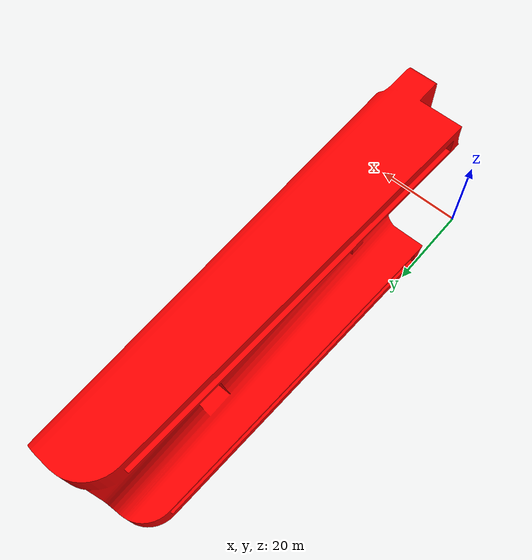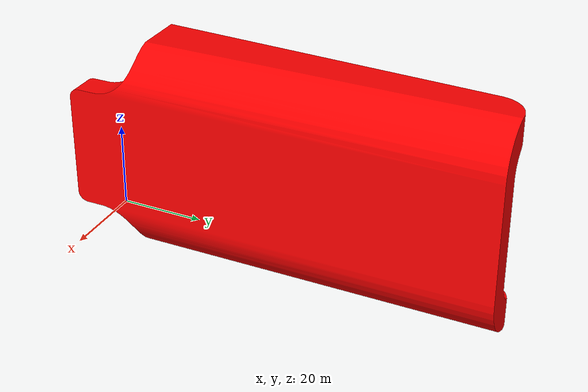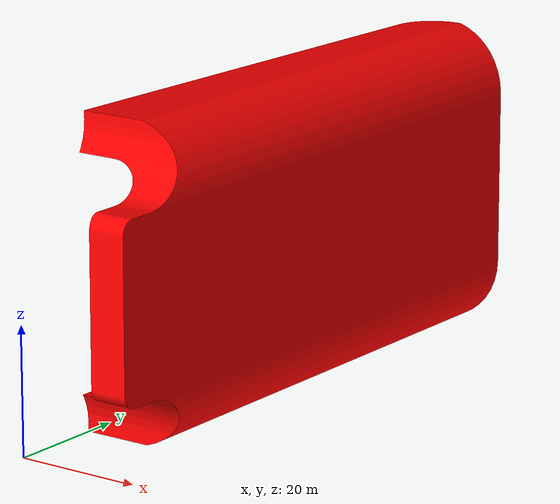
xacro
<?xml version="1.0"?>
<robot name="robot_name">
    <link name="link_name">
        <inertial>
            <origin xyz="0.0 0.0 0.0" rpy="0.0 0.0 0.0"/>
            <mass value="0.0"/>
            <inertia ixx="0.0" ixy="0.0" ixz="0.0" iyy="0.0" iyz="0.0" izz="0.0"/>
        </inertial>
        <visual name="">
            <origin xyz="0.0 0.0 0.0" rpy="0.0 0.0 0.0"/>
            <geometry>
                <mesh filename="package://robot_description_pkg/meshes/1.stl"/>
            </geometry>
            <material name="">
                <color rgba="1.0 0.0 0.0 1.0"/>
                <texture filename=""/>
            </material>
        </visual>
        <collision>
            <origin xyz="0.0 0.0 0.0" rpy="0.0 0.0 0.0"/>
            <geometry>
                <box size="0.0 0.0 0.0"/>
            </geometry>
        </collision>
    </link>
</robot>
